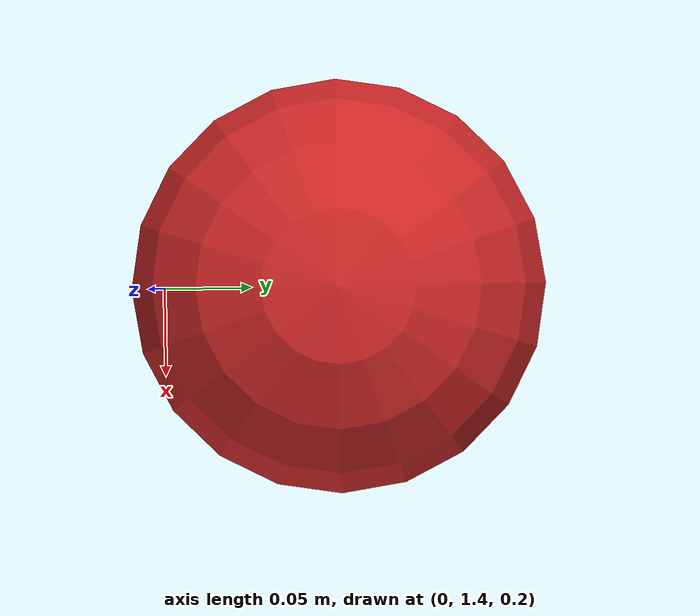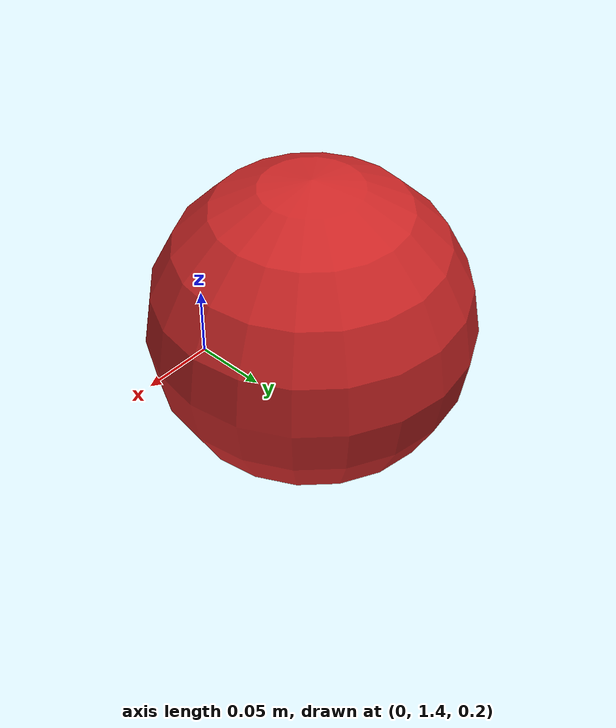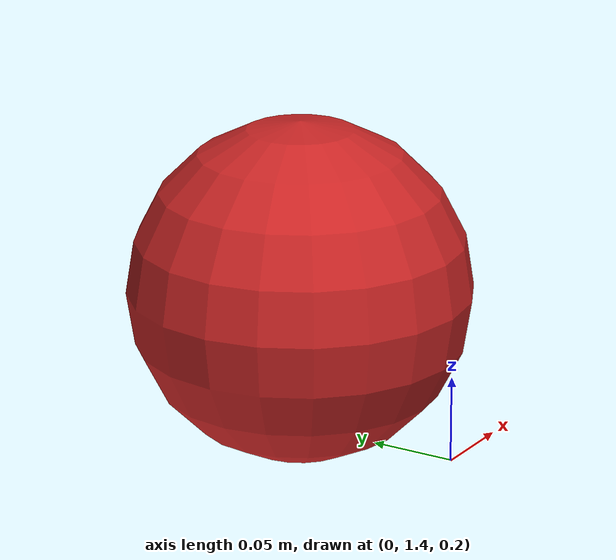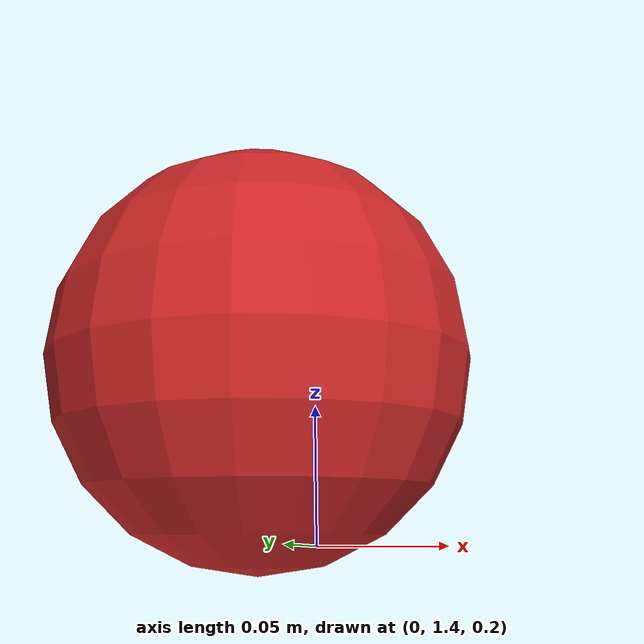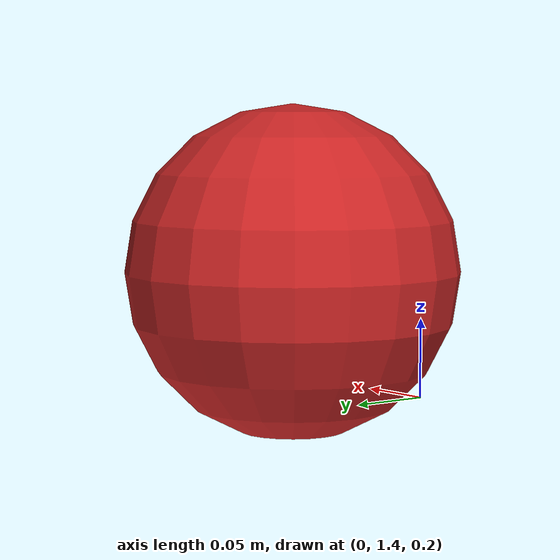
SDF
<?xml version='1.0'?>
<sdf version='1.6'>
  <model name='ball_red'>
    <link name='link'>
      <pose frame=''>0 1.5 0.284585 0 -0 0</pose>
      <inertial>
        <mass>0.05</mass>
        <inertia>
          <ixx>0.1</ixx>
          <ixy>0</ixy>
          <ixz>0</ixz>
          <iyy>0.1</iyy>
          <iyz>0</iyz>
          <izz>0.1</izz>
        </inertia>
        <pose frame=''>0 0 0 0 -0 0</pose>
      </inertial>
      <self_collide>0</self_collide>
      <kinematic>0</kinematic>
      <gravity>1</gravity>
      <enable_wind>0</enable_wind>
      <visual name='visual'>
        <geometry>
          <sphere>
            <radius>0.1</radius>
          </sphere>
        </geometry>
        <material>
          <script>
            <name>Gazebo/RedBright</name>
            <uri>file://media/materials/scripts/gazebo.material</uri>
          </script>
          <ambient>1 0 0 1</ambient>
          <diffuse>1 0 0 1</diffuse>
          <specular>1 0 0 1</specular>
          <emissive>0 0 0 1</emissive>
          <shader type='vertex'>
            <normal_map>__default__</normal_map>
          </shader>
        </material>
        <pose frame=''>0 0 0 0 -0 0</pose>
        <cast_shadows>1</cast_shadows>
        <transparency>0</transparency>
      </visual>
      <collision name='collision'>
        <laser_retro>0</laser_retro>
        <max_contacts>10</max_contacts>
        <pose frame=''>0 0 0 0 -0 0</pose>
        <geometry>
          <sphere>
            <radius>0.1</radius>
          </sphere>
        </geometry>
        <surface>
          <friction>
            <ode>
              <mu>1</mu>
              <mu2>1</mu2>
              <fdir1>0 0 0</fdir1>
              <slip1>0</slip1>
              <slip2>0</slip2>
            </ode>
            <torsional>
              <coefficient>1</coefficient>
              <patch_radius>0</patch_radius>
              <surface_radius>0</surface_radius>
              <use_patch_radius>1</use_patch_radius>
              <ode>
                <slip>0</slip>
              </ode>
            </torsional>
          </friction>
          <bounce>
            <restitution_coefficient>0.5</restitution_coefficient>
            <threshold>0.001</threshold>
          </bounce>
          <contact>
            <collide_without_contact>0</collide_without_contact>
            <collide_without_contact_bitmask>1</collide_without_contact_bitmask>
            <collide_bitmask>1</collide_bitmask>
            <ode>
              <soft_cfm>0</soft_cfm>
              <soft_erp>0.2</soft_erp>
              <kp>1e+13</kp>
              <kd>1</kd>
              <max_vel>10</max_vel>
              <min_depth>0</min_depth>
            </ode>
            <bullet>
              <split_impulse>1</split_impulse>
              <split_impulse_penetration_threshold>-0.01</split_impulse_penetration_threshold>
              <soft_cfm>0</soft_cfm>
              <soft_erp>0.2</soft_erp>
              <kp>1e+13</kp>
              <kd>1</kd>
            </bullet>
          </contact>
        </surface>
      </collision>
    </link>
    <static>0</static>
    <allow_auto_disable>1</allow_auto_disable>
  </model>
</sdf>
